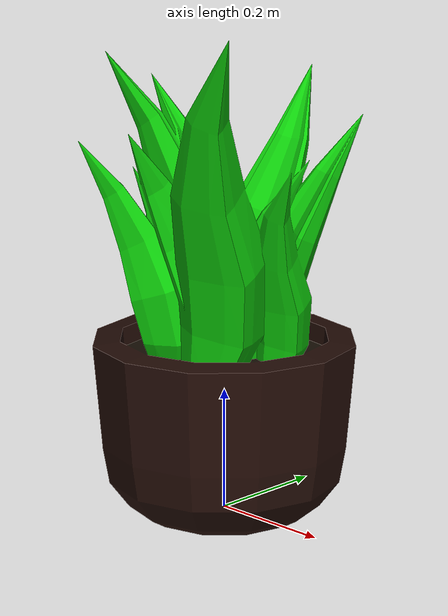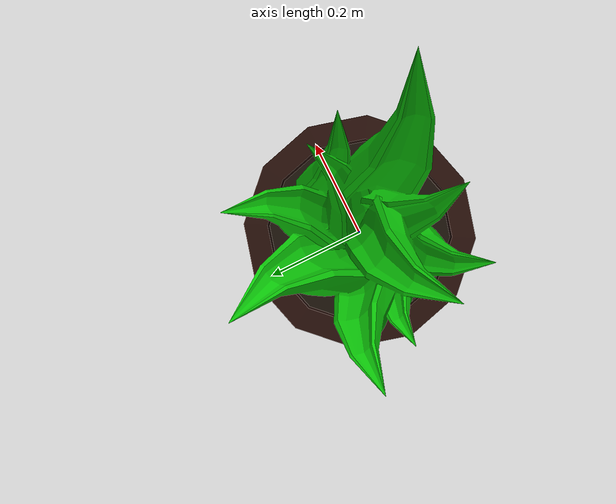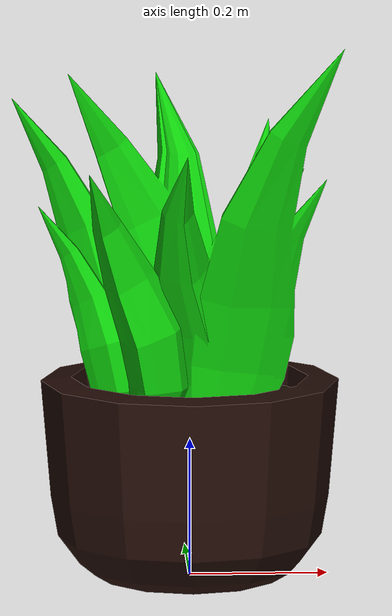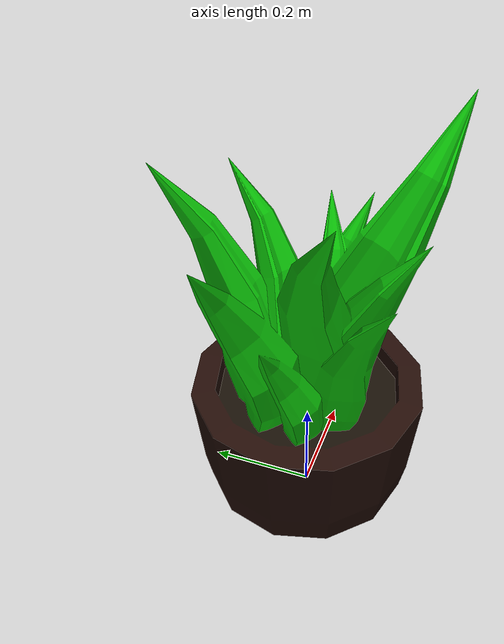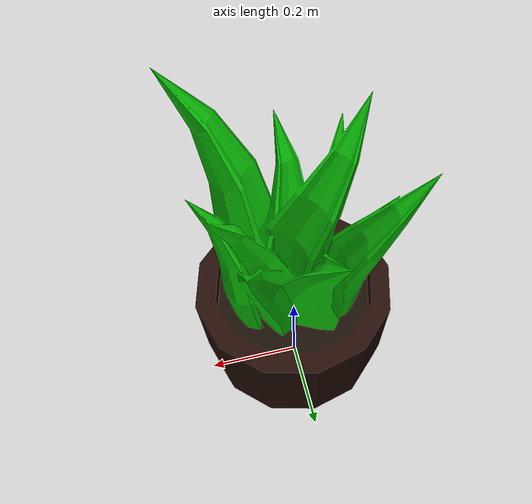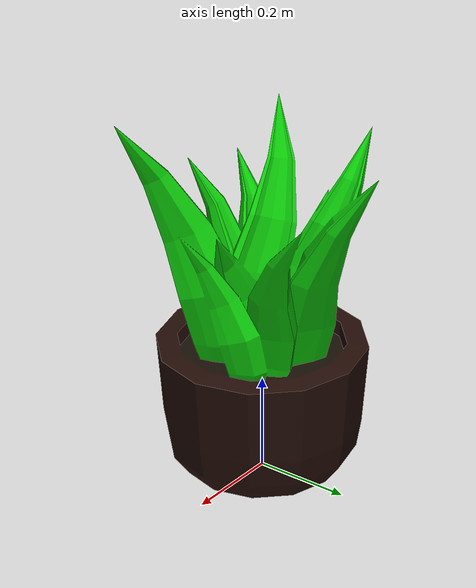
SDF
<?xml version="1.0" ?>
<sdf version="1.6">
  <model name="plant">
    <static>true</static>
    <link name="link">
      <visual name="visual">
        <geometry>
          <mesh>
            <uri>file:///home/kyshima/gazebo_ws/src/plugins/models/plants/PotPlant.dae</uri>
	    <scale>0.2 0.2 0.2</scale>
          </mesh>
        </geometry>
      </visual>
    </link>
  </model>
</sdf>
